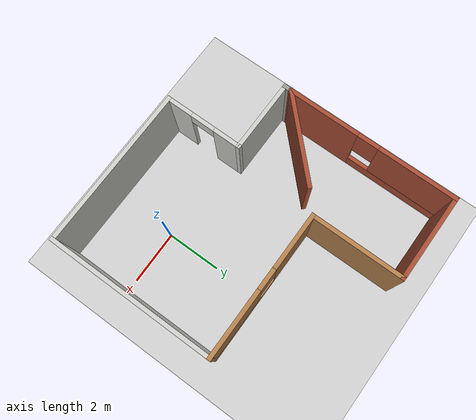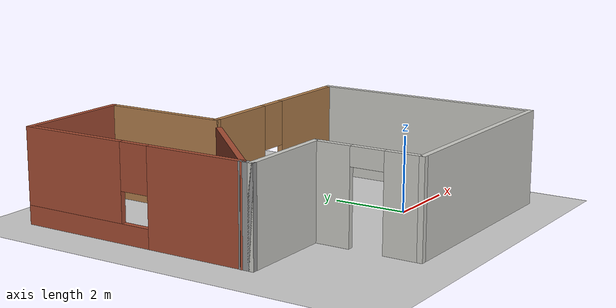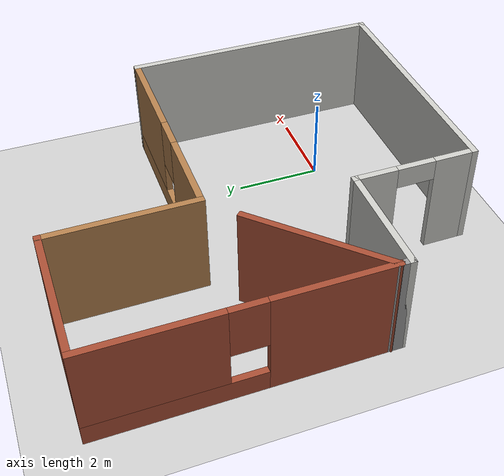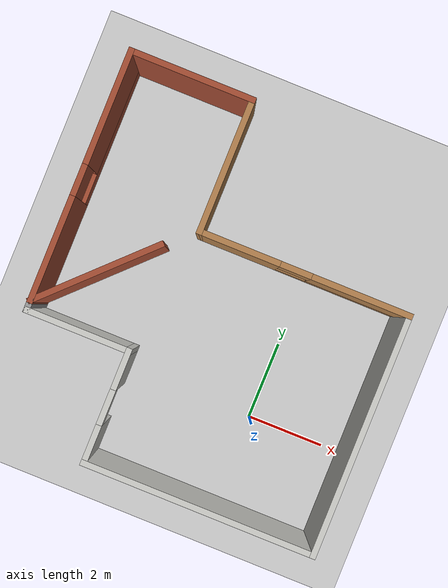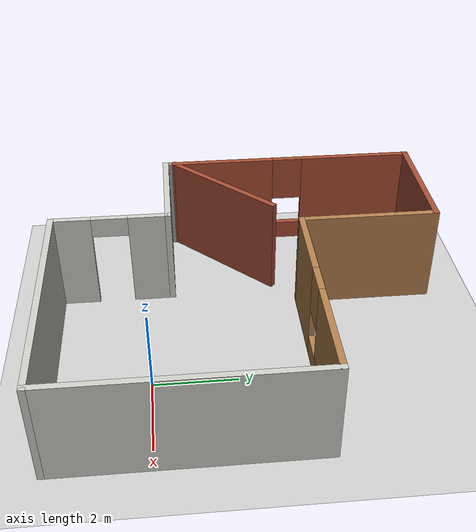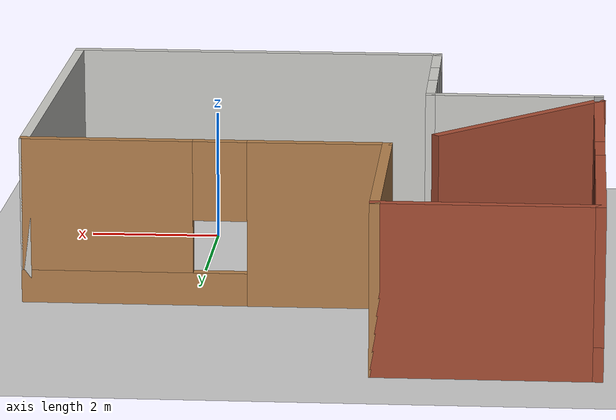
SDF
<sdf version="1.6">
 <world name="default">
  <light name="sun" type="directional">
   <pose>0 0 10 0 -0 0</pose>
   <diffuse>0.8 0.8 0.8 1</diffuse>
   <specular>0.2 0.2 0.2 1</specular>
   <attenuation>
    <range>1000</range>
    <constant>0.9</constant>
    <linear>0.01</linear>
    <quadratic>0.001</quadratic>
   </attenuation>
   <direction>-0.5 0.1 -0.9</direction>
   <spot><inner_angle>0</inner_angle><outer_angle>0</outer_angle><falloff>0</falloff></spot>
  </light>
  <model name="ground_plane">
   <static>1</static>
   <link name="link">
    <collision name="collision">
     <geometry><plane><normal>0 0 1</normal><size>100 100</size></plane></geometry>
     <surface>
      <contact><collide_bitmask>65535</collide_bitmask></contact>
      <friction><ode><mu>100</mu><mu2>50</mu2></ode></friction>
     </surface>
    </collision>
    <visual name="visual">
     <cast_shadows>0</cast_shadows>
     <geometry><plane><normal>0 0 1</normal><size>100 100</size></plane></geometry>
     <material>
      <script><uri>file://media/materials/scripts/gazebo.material</uri><name>Gazebo/Grey</name></script>
     </material>
    </visual>
   </link>
  </model>
  <gravity>0 0 -9.8</gravity>
  <magnetic_field>6e-06 2.3e-05 -4.2e-05</magnetic_field>
  <atmosphere type="adiabatic"/>
  <physics name="default_physics" default="0" type="ode">
   <max_step_size>0.001</max_step_size>
   <real_time_factor>1</real_time_factor>
   <real_time_update_rate>1000</real_time_update_rate>
  </physics>
  <scene><ambient>0.4 0.4 0.4 1</ambient><background>0.7 0.7 0.7 1</background><shadows>1</shadows></scene>
  <spherical_coordinates>
   <surface_model>EARTH_WGS84</surface_model>
   <latitude_deg>0</latitude_deg>
   <longitude_deg>0</longitude_deg>
   <elevation>0</elevation>
   <heading_deg>0</heading_deg>
  </spherical_coordinates>
  <plugin name="collision_map_creator" filename="libcollision_map_creator.so"/>
  <model name="Untitlenwqd">
   <pose>-1.75971 2.43902 0 0 -0 0</pose>
   <link name="Wall_0">
    <pose>-4.20947 1.55 0 0 -0 1.5708</pose>
    <visual name="Wall_0_Visual_0">
     <pose>-1.88083 0 1.25 0 -0 0</pose>
     <geometry><box><size>2.73833 0.15 2.5</size></box></geometry>
     <material>
      <script><uri>file://media/materials/scripts/gazebo.material</uri><name>Gazebo/Bricks</name></script>
      <ambient>1 1 1 1</ambient>
     </material>
     <meta><layer>0</layer></meta>
    </visual>
    <collision name="Wall_0_Collision_0">
     <geometry><box><size>2.73833 0.15 2.5</size></box></geometry>
     <pose>-1.88083 0 1.25 0 -0 0</pose>
    </collision>
    <visual name="Wall_0_Visual_1">
     <pose>1.36917 0 0.25 0 -0 0</pose>
     <geometry><box><size>3.76167 0.15 0.5</size></box></geometry>
     <material>
      <script><uri>file://media/materials/scripts/gazebo.material</uri><name>Gazebo/Bricks</name></script>
      <ambient>1 1 1 1</ambient>
     </material>
     <meta><layer>0</layer></meta>
    </visual>
    <collision name="Wall_0_Collision_1">
     <geometry><box><size>3.76167 0.15 0.5</size></box></geometry>
     <pose>1.36917 0 0.25 0 -0 0</pose>
    </collision>
    <visual name="Wall_0_Visual_2">
     <pose>1.76917 0 1.5 0 -0 0</pose>
     <geometry><box><size>2.96167 0.15 2</size></box></geometry>
     <material>
      <script><uri>file://media/materials/scripts/gazebo.material</uri><name>Gazebo/Bricks</name></script>
      <ambient>1 1 1 1</ambient>
     </material>
     <meta><layer>0</layer></meta>
    </visual>
    <collision name="Wall_0_Collision_2">
     <geometry><box><size>2.96167 0.15 2</size></box></geometry>
     <pose>1.76917 0 1.5 0 -0 0</pose>
    </collision>
    <visual name="Wall_0_Visual_3">
     <pose>-0.111667 0 1.9 0 -0 0</pose>
     <geometry><box><size>0.8 0.15 1.2</size></box></geometry>
     <material>
      <script><uri>file://media/materials/scripts/gazebo.material</uri><name>Gazebo/Bricks</name></script>
      <ambient>1 1 1 1</ambient>
     </material>
     <meta><layer>0</layer></meta>
    </visual>
    <collision name="Wall_0_Collision_3">
     <geometry><box><size>0.8 0.15 1.2</size></box></geometry>
     <pose>-0.111667 0 1.9 0 -0 0</pose>
    </collision>
   </link>
   <link name="Wall_1">
    <collision name="Wall_1_Collision">
     <geometry><box><size>3.25 0.15 2.5</size></box></geometry>
     <pose>0 0 1.25 0 -0 0</pose>
    </collision>
    <visual name="Wall_1_Visual">
     <pose>0 0 1.25 0 -0 0</pose>
     <geometry><box><size>3.25 0.15 2.5</size></box></geometry>
     <material>
      <script><uri>file://media/materials/scripts/gazebo.material</uri><name>Gazebo/Bricks</name></script>
      <ambient>1 0.764706 0.305882 1</ambient>
     </material>
     <meta><layer>0</layer></meta>
    </visual>
    <pose>-2.65947 4.725 0 0 -0 0</pose>
   </link>
   <link name="Wall_2">
    <collision name="Wall_2_Collision">
     <geometry><box><size>3.5 0.15 2.5</size></box></geometry>
     <pose>0 0 1.25 0 -0 0</pose>
    </collision>
    <visual name="Wall_2_Visual">
     <pose>0 0 1.25 0 -0 0</pose>
     <geometry><box><size>3.5 0.15 2.5</size></box></geometry>
     <material>
      <script><uri>file://media/materials/scripts/gazebo.material</uri><name>Gazebo/Wood</name></script>
      <ambient>1 1 1 1</ambient>
     </material>
     <meta><layer>0</layer></meta>
    </visual>
    <pose>-1.10947 3.05 0 0 0 -1.5708</pose>
   </link>
   <link name="Wall_3">
    <pose>1.56553 1.375 0 0 -0 0</pose>
    <visual name="Wall_3_Visual_0">
     <pose>-1.68189 0 1.25 0 -0 0</pose>
     <geometry><box><size>2.13622 0.15 2.5</size></box></geometry>
     <material>
      <script><uri>file://media/materials/scripts/gazebo.material</uri><name>Gazebo/Wood</name></script>
      <ambient>1 1 1 1</ambient>
     </material>
     <meta><layer>0</layer></meta>
    </visual>
    <collision name="Wall_3_Collision_0">
     <geometry><box><size>2.13622 0.15 2.5</size></box></geometry>
     <pose>-1.68189 0 1.25 0 -0 0</pose>
    </collision>
    <visual name="Wall_3_Visual_1">
     <pose>1.06811 0 0.25 0 -0 0</pose>
     <geometry><box><size>3.36378 0.15 0.5</size></box></geometry>
     <material>
      <script><uri>file://media/materials/scripts/gazebo.material</uri><name>Gazebo/Wood</name></script>
      <ambient>1 1 1 1</ambient>
     </material>
     <meta><layer>0</layer></meta>
    </visual>
    <collision name="Wall_3_Collision_1">
     <geometry><box><size>3.36378 0.15 0.5</size></box></geometry>
     <pose>1.06811 0 0.25 0 -0 0</pose>
    </collision>
    <visual name="Wall_3_Visual_2">
     <pose>1.46811 0 1.5 0 -0 0</pose>
     <geometry><box><size>2.56378 0.15 2</size></box></geometry>
     <material>
      <script><uri>file://media/materials/scripts/gazebo.material</uri><name>Gazebo/Wood</name></script>
      <ambient>1 1 1 1</ambient>
     </material>
     <meta><layer>0</layer></meta>
    </visual>
    <collision name="Wall_3_Collision_2">
     <geometry><box><size>2.56378 0.15 2</size></box></geometry>
     <pose>1.46811 0 1.5 0 -0 0</pose>
    </collision>
    <visual name="Wall_3_Visual_3">
     <pose>-0.213778 0 1.9 0 -0 0</pose>
     <geometry><box><size>0.8 0.15 1.2</size></box></geometry>
     <material>
      <script><uri>file://media/materials/scripts/gazebo.material</uri><name>Gazebo/Wood</name></script>
      <ambient>1 1 1 1</ambient>
     </material>
     <meta><layer>0</layer></meta>
    </visual>
    <collision name="Wall_3_Collision_3">
     <geometry><box><size>0.8 0.15 1.2</size></box></geometry>
     <pose>-0.213778 0 1.9 0 -0 0</pose>
    </collision>
   </link>
   <link name="Wall_4">
    <collision name="Wall_4_Collision">
     <geometry><box><size>6.25 0.15 2.5</size></box></geometry>
     <pose>0 0 1.25 0 -0 0</pose>
    </collision>
    <visual name="Wall_4_Visual">
     <pose>0 0 1.25 0 -0 0</pose>
     <geometry><box><size>6.25 0.15 2.5</size></box></geometry>
     <material>
      <script><uri>file://media/materials/scripts/gazebo.material</uri><name>Gazebo/CeilingTiled</name></script>
      <ambient>0.760784 0.662745 0.627451 1</ambient>
     </material>
     <meta><layer>0</layer></meta>
    </visual>
    <pose>4.24053 -1.675 0 0 0 -1.5708</pose>
   </link>
   <link name="Wall_5">
    <collision name="Wall_5_Collision">
     <geometry><box><size>6 0.15 2.5</size></box></geometry>
     <pose>0 0 1.25 0 -0 0</pose>
    </collision>
    <visual name="Wall_5_Visual">
     <pose>0 0 1.25 0 -0 0</pose>
     <geometry><box><size>6 0.15 2.5</size></box></geometry>
     <material>
      <script><uri>file://media/materials/scripts/gazebo.material</uri><name>Gazebo/CeilingTiled</name></script>
      <ambient>1 1 1 1</ambient>
     </material>
     <meta><layer>0</layer></meta>
    </visual>
    <pose>1.31553 -4.725 0 0 -0 3.14159</pose>
   </link>
   <link name="Wall_6">
    <pose>-1.60947 -3.3 0 0 -0 1.5708</pose>
    <visual name="Wall_6_Visual_0">
     <pose>-0.979235 0 1.25 0 -0 0</pose>
     <geometry><box><size>1.04153 0.15 2.5</size></box></geometry>
     <material>
      <script><uri>file://media/materials/scripts/gazebo.material</uri><name>Gazebo/CeilingTiled</name></script>
      <ambient>1 1 1 1</ambient>
     </material>
     <meta><layer>0</layer></meta>
    </visual>
    <collision name="Wall_6_Collision_0">
     <geometry><box><size>1.04153 0.15 2.5</size></box></geometry>
     <pose>-0.979235 0 1.25 0 -0 0</pose>
    </collision>
    <visual name="Wall_6_Visual_1">
     <pose>0.970765 0 1.25 0 -0 0</pose>
     <geometry><box><size>1.05847 0.15 2.5</size></box></geometry>
     <material>
      <script><uri>file://media/materials/scripts/gazebo.material</uri><name>Gazebo/CeilingTiled</name></script>
      <ambient>1 1 1 1</ambient>
     </material>
     <meta><layer>0</layer></meta>
    </visual>
    <collision name="Wall_6_Collision_1">
     <geometry><box><size>1.05847 0.15 2.5</size></box></geometry>
     <pose>0.970765 0 1.25 0 -0 0</pose>
    </collision>
    <visual name="Wall_6_Visual_2">
     <pose>-0.00847 0 2.25 0 -0 0</pose>
     <geometry><box><size>0.9 0.15 0.5</size></box></geometry>
     <material>
      <script><uri>file://media/materials/scripts/gazebo.material</uri><name>Gazebo/CeilingTiled</name></script>
      <ambient>1 1 1 1</ambient>
     </material>
     <meta><layer>0</layer></meta>
    </visual>
    <collision name="Wall_6_Collision_2">
     <geometry><box><size>0.9 0.15 0.5</size></box></geometry>
     <pose>-0.00847 0 2.25 0 -0 0</pose>
    </collision>
   </link>
   <link name="Wall_7">
    <collision name="Wall_7_Collision">
     <geometry><box><size>2.75 0.15 2.5</size></box></geometry>
     <pose>0 0 1.25 0 -0 0</pose>
    </collision>
    <visual name="Wall_7_Visual">
     <pose>0 0 1.25 0 -0 0</pose>
     <geometry><box><size>2.75 0.15 2.5</size></box></geometry>
     <material>
      <script><uri>file://media/materials/scripts/gazebo.material</uri><name>Gazebo/CeilingTiled</name></script>
      <ambient>1 1 1 1</ambient>
     </material>
     <meta><layer>0</layer></meta>
    </visual>
    <pose>-2.90947 -1.875 0 0 -0 3.14159</pose>
   </link>
   <link name="Wall_8">
    <collision name="Wall_8_Collision">
     <geometry><box><size>0.4 0.15 2.5</size></box></geometry>
     <pose>0 0 1.25 0 -0 0</pose>
    </collision>
    <visual name="Wall_8_Visual">
     <pose>0 0 1.25 0 -0 0</pose>
     <geometry><box><size>0.4 0.15 2.5</size></box></geometry>
     <material>
      <script><uri>file://media/materials/scripts/gazebo.material</uri><name>Gazebo/Grey</name></script>
      <ambient>1 1 1 1</ambient>
     </material>
     <meta><layer>0</layer></meta>
    </visual>
    <pose>-4.20947 -1.75 0 0 -0 1.5708</pose>
   </link>
   <link name="Wall_9">
    <collision name="Wall_9_Collision">
     <geometry><box><size>3.5 0.15 2.5</size></box></geometry>
     <pose>0 0 1.25 0 -0 0</pose>
    </collision>
    <visual name="Wall_9_Visual">
     <pose>0 0 1.25 0 -0 0</pose>
     <geometry><box><size>3.5 0.15 2.5</size></box></geometry>
     <material>
      <script><uri>file://media/materials/scripts/gazebo.material</uri><name>Gazebo/Bricks</name></script>
      <ambient>1 1 1 1</ambient>
     </material>
     <meta><layer>0</layer></meta>
    </visual>
    <pose>-3.02506 -0.440596 0 0 -0 0.785398</pose>
   </link>
   <static>1</static>
  </model>
  <plugin filename="libcollision_map_creator.so" name="collision_map_creator"/>
 </world>
</sdf>
